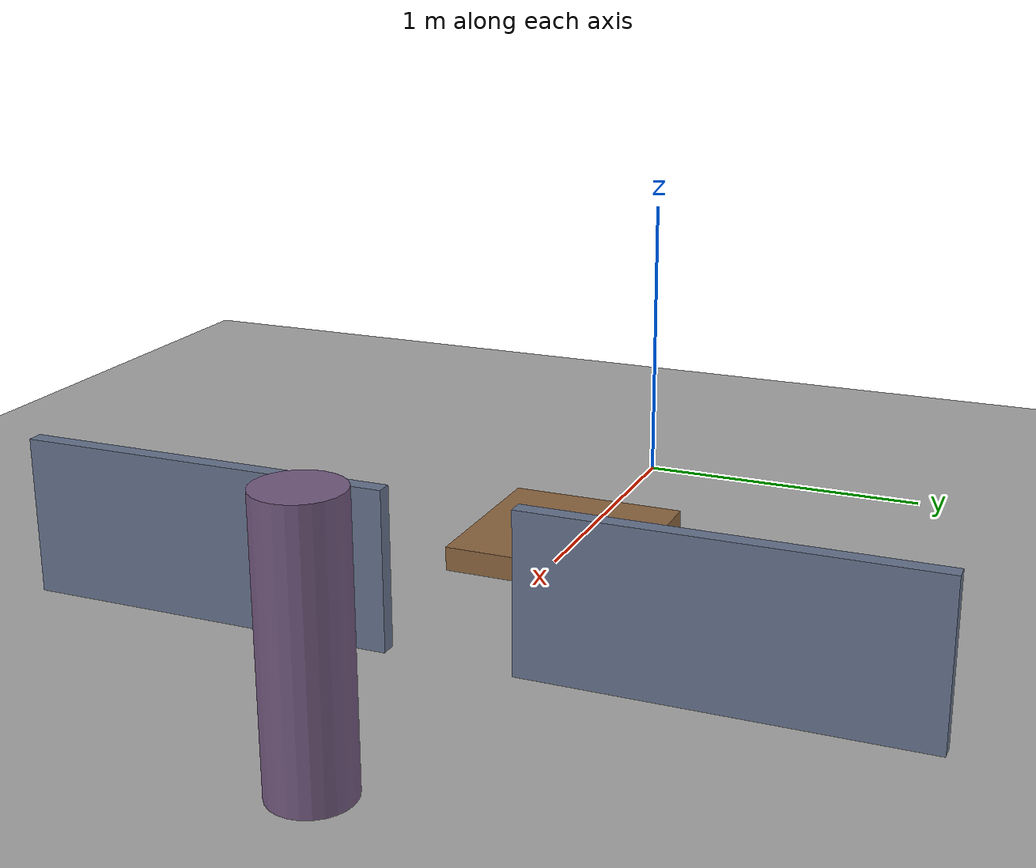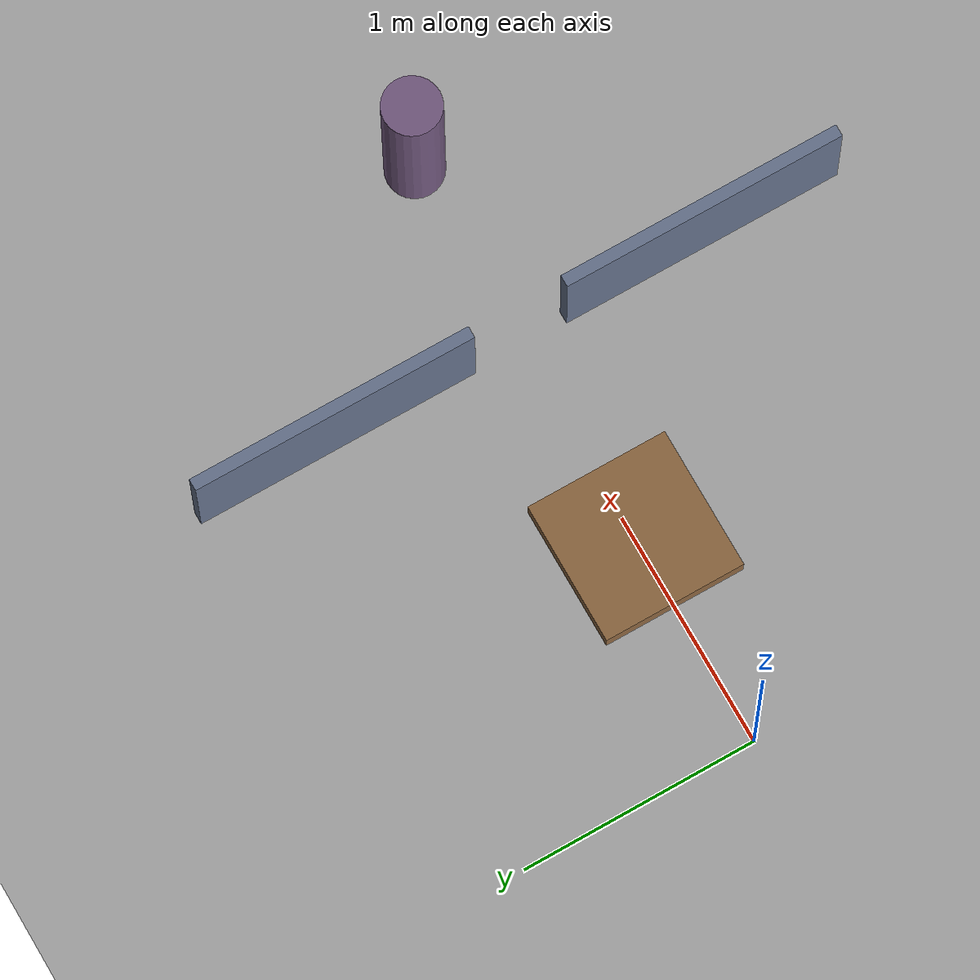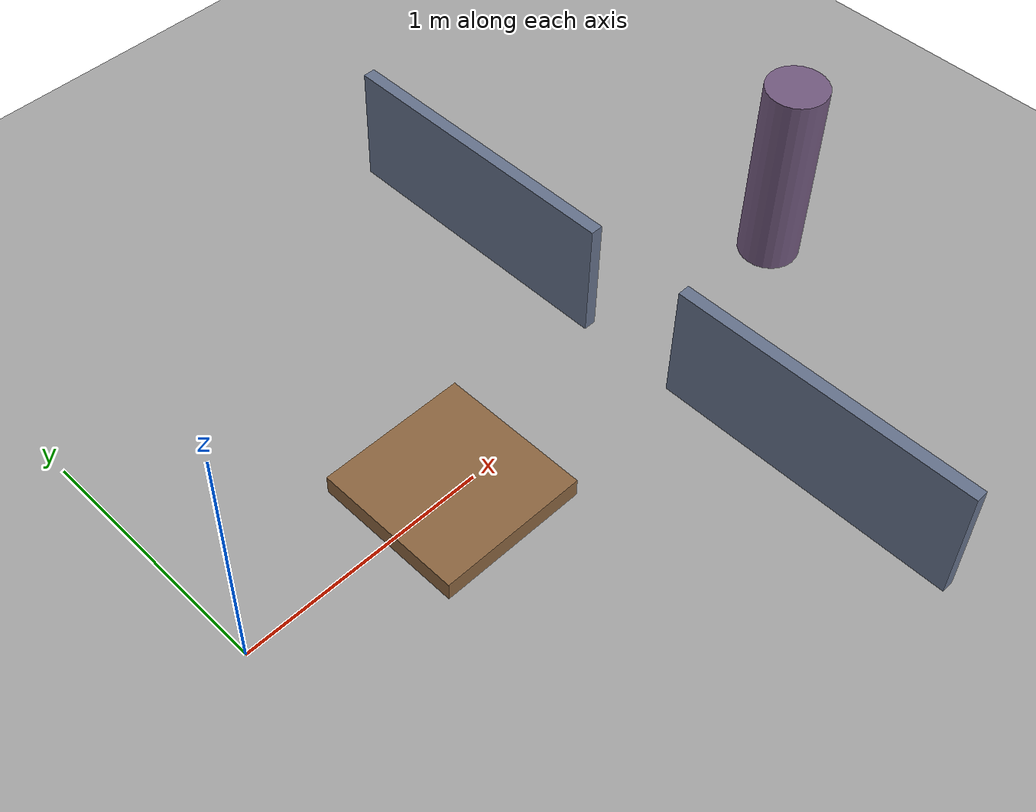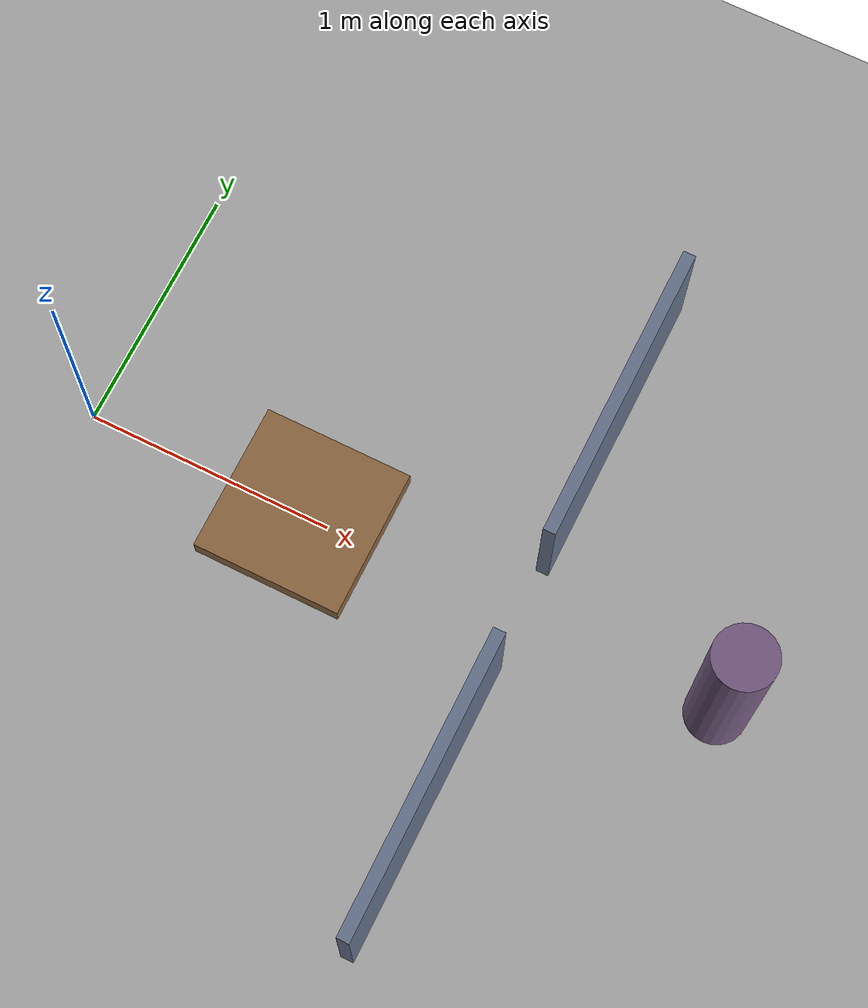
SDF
<?xml version="1.0" ?>
<sdf version="1.10">
  <world name="obstacles">
    <physics name="default_physics" default="true" type="ignored">
      <max_step_size>0.001</max_step_size>
      <real_time_factor>1.0</real_time_factor>
    </physics>

    <plugin filename="gz-sim-physics-system" name="gz::sim::systems::Physics"/>
    <plugin filename="gz-sim-user-commands-system" name="gz::sim::systems::UserCommands"/>
    <plugin filename="gz-sim-scene-broadcaster-system" name="gz::sim::systems::SceneBroadcaster"/>
    <plugin filename="gz-sim-sensors-system" name="gz::sim::systems::Sensors">
      <render_engine>ogre2</render_engine>
    </plugin>
    <plugin filename="gz-sim-imu-system" name="gz::sim::systems::Imu"/>
    <plugin filename="gz-sim-contact-system" name="gz::sim::systems::Contact"/>

    <light type="directional" name="sun">
      <cast_shadows>true</cast_shadows>
      <pose>0 0 10 0 0 0</pose>
      <diffuse>0.8 0.8 0.8 1</diffuse>
      <specular>0.2 0.2 0.2 1</specular>
      <direction>-0.5 0.1 -0.9</direction>
    </light>

    <model name="ground_plane">
      <static>true</static>
      <link name="link">
        <collision name="collision">
          <geometry><plane><normal>0 0 1</normal><size>40 40</size></plane></geometry>
        </collision>
        <visual name="visual">
          <geometry><plane><normal>0 0 1</normal><size>40 40</size></plane></geometry>
          <material>
            <ambient>0.65 0.65 0.65 1</ambient>
            <diffuse>0.65 0.65 0.65 1</diffuse>
          </material>
        </visual>
      </link>
    </model>

    <model name="obstacle_step">
      <static>true</static>
      <pose>0.9 0 0.04 0 0 0</pose>
      <link name="link">
        <collision name="collision"><geometry><box><size>0.6 0.6 0.08</size></box></geometry></collision>
        <visual name="visual">
          <geometry><box><size>0.6 0.6 0.08</size></box></geometry>
          <material><ambient>0.55 0.4 0.25 1</ambient><diffuse>0.55 0.4 0.25 1</diffuse></material>
        </visual>
      </link>
    </model>

    <model name="obstacle_wall_a">
      <static>true</static>
      <pose>1.8 0.8 0.25 0 0 0</pose>
      <link name="link">
        <collision name="collision"><geometry><box><size>0.05 1.2 0.5</size></box></geometry></collision>
        <visual name="visual">
          <geometry><box><size>0.05 1.2 0.5</size></box></geometry>
          <material><ambient>0.4 0.45 0.55 1</ambient><diffuse>0.4 0.45 0.55 1</diffuse></material>
        </visual>
      </link>
    </model>

    <model name="obstacle_wall_b">
      <static>true</static>
      <pose>1.8 -0.8 0.25 0 0 0</pose>
      <link name="link">
        <collision name="collision"><geometry><box><size>0.05 1.2 0.5</size></box></geometry></collision>
        <visual name="visual">
          <geometry><box><size>0.05 1.2 0.5</size></box></geometry>
          <material><ambient>0.4 0.45 0.55 1</ambient><diffuse>0.4 0.45 0.55 1</diffuse></material>
        </visual>
      </link>
    </model>

    <model name="obstacle_pillar">
      <static>true</static>
      <pose>2.6 0 0.4 0 0 0</pose>
      <link name="link">
        <collision name="collision"><geometry><cylinder><radius>0.12</radius><length>0.8</length></cylinder></geometry></collision>
        <visual name="visual">
          <geometry><cylinder><radius>0.12</radius><length>0.8</length></cylinder></geometry>
          <material><ambient>0.45 0.35 0.5 1</ambient><diffuse>0.45 0.35 0.5 1</diffuse></material>
        </visual>
      </link>
    </model>
  </world>
</sdf>
